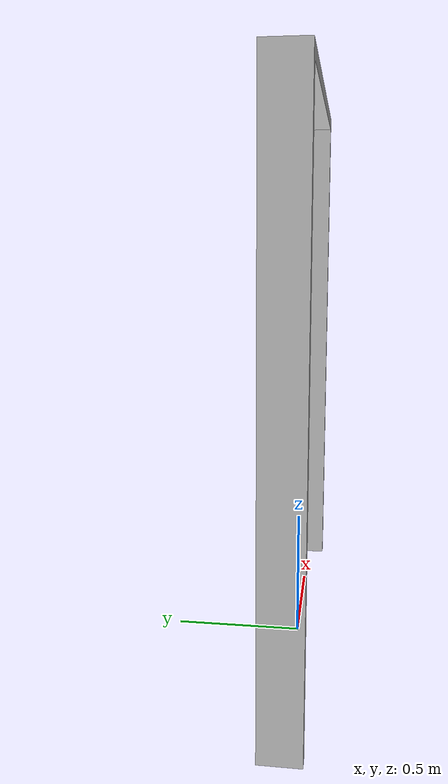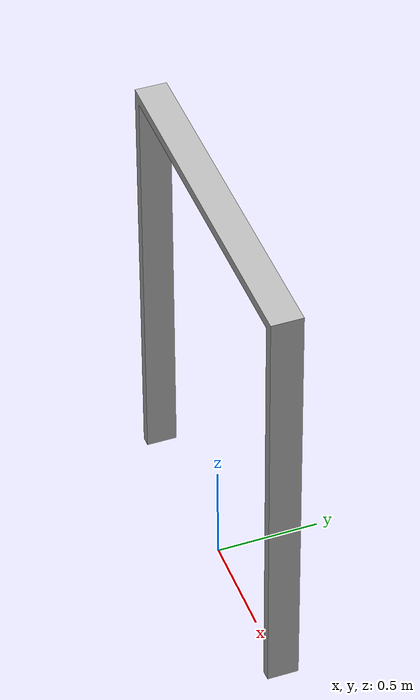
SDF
<?xml version="1.0"?>
<sdf version="1.4">
<model name="futra_160">
	<pose>0 0 0 0 0 0</pose>
	<static>true</static>
	<link name="futra_160_collision">
		<collision name="futra_160_collision">
		<geometry>
			<mesh>
				<uri>model://futra_160/meshes/model.dae</uri>

			</mesh>
		</geometry>
		</collision>
	<visual name="futra_160_mesh">
	<cast_shadows>false</cast_shadows>
		<geometry>
			<mesh>
				<uri> model://futra_160/meshes/model.dae</uri>

			</mesh>
		</geometry>
		<material>
		<script>
			<uri> model://futra_160/material/scripts</uri>
			<uri> model://futra_160/material/textures</uri>
			<name>futra_160/Diffuse</name>
		</script>
		</material>

	</visual>
</link>
</model>
</sdf>
